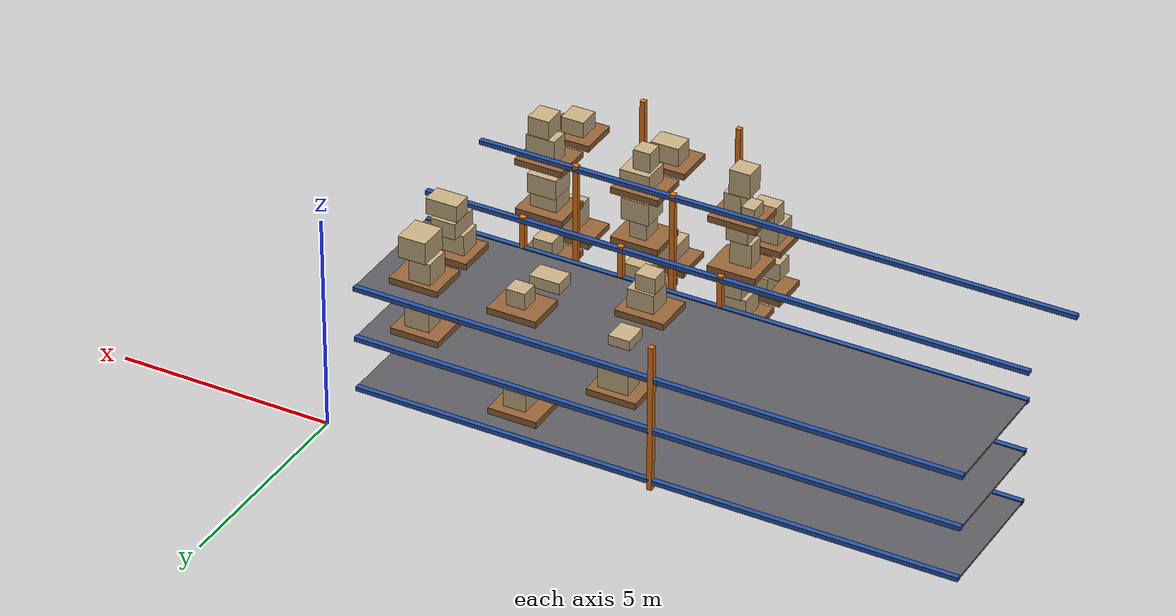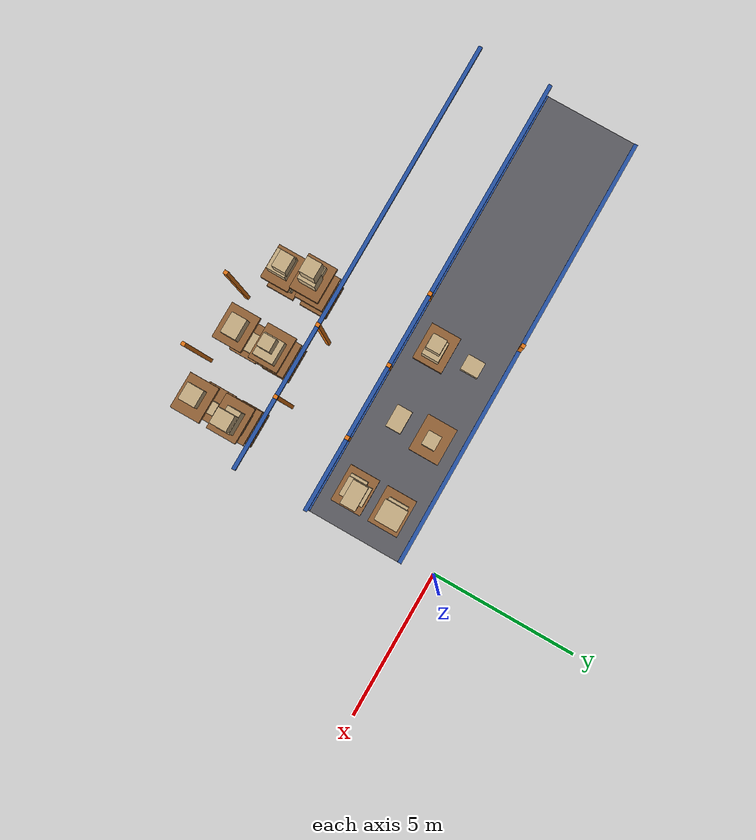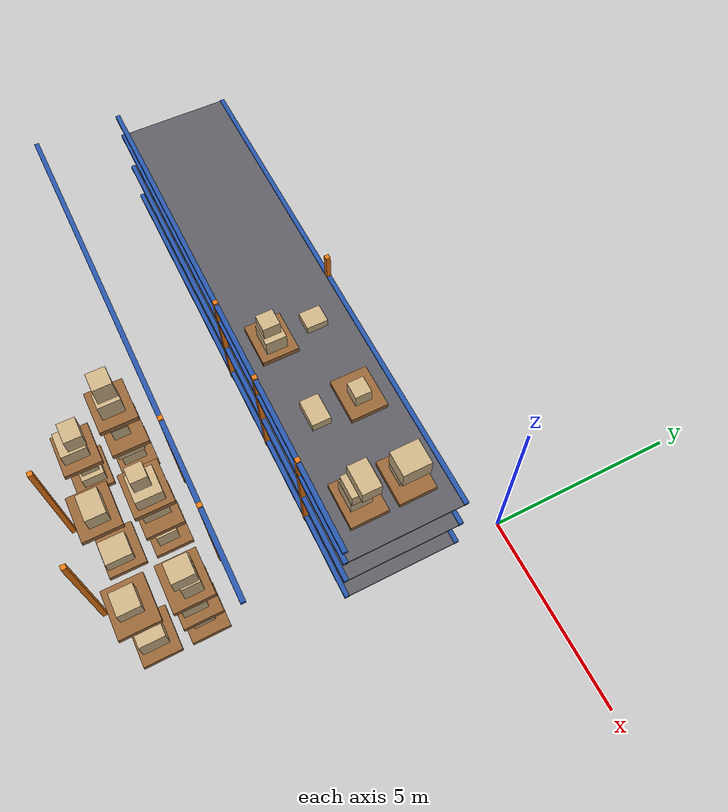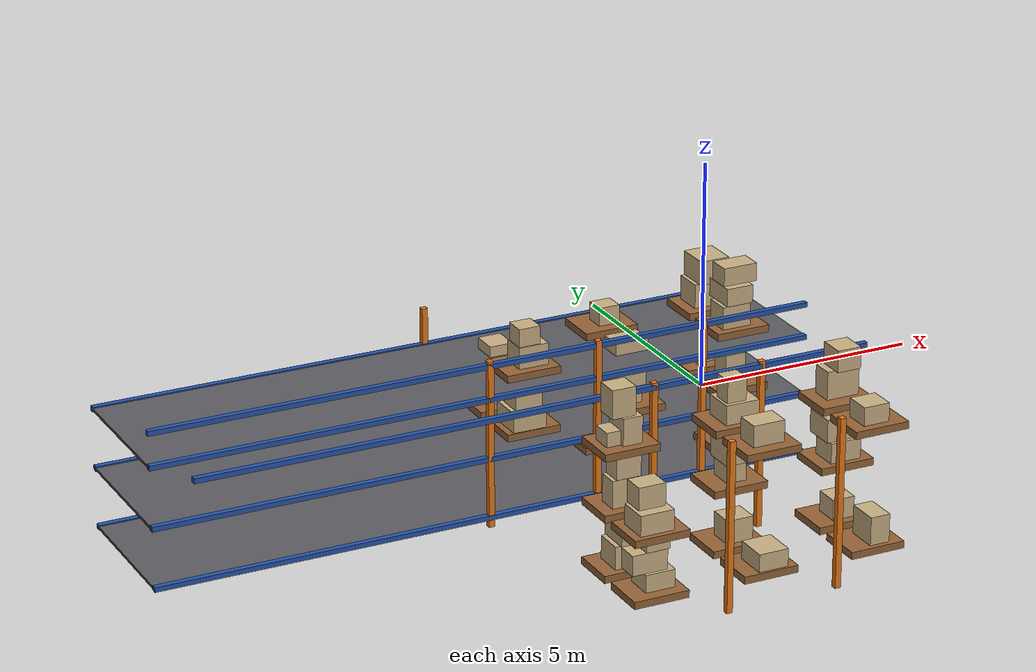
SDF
<sdf version="1.7">
 <world name="default">
  <model name="warehouse_racks">
   <static>1</static>
   <link name="r00_u4_0">
    <pose>-4.66667 -9.5 1.75 0 0 0</pose>
    <collision name="c"><geometry><box><size>0.12 0.12 3.5</size></box></geometry></collision>
    <visual name="v">
     <geometry><box><size>0.12 0.12 3.5</size></box></geometry>
     <material>
      <ambient>0.910 0.471 0.086 1</ambient>
      <diffuse>0.910 0.471 0.086 1</diffuse>
      <specular>0.1 0.1 0.1 1</specular>
     </material>
    </visual>
   </link>
   <link name="r00_u4_1">
    <pose>-4.66667 -6.5 1.75 0 0 0</pose>
    <collision name="c"><geometry><box><size>0.12 0.12 3.5</size></box></geometry></collision>
    <visual name="v">
     <geometry><box><size>0.12 0.12 3.5</size></box></geometry>
     <material>
      <ambient>0.910 0.471 0.086 1</ambient>
      <diffuse>0.910 0.471 0.086 1</diffuse>
      <specular>0.1 0.1 0.1 1</specular>
     </material>
    </visual>
   </link>
   <link name="r00_u5_0">
    <pose>-2.33333 -9.5 1.75 0 0 0</pose>
    <collision name="c"><geometry><box><size>0.12 0.12 3.5</size></box></geometry></collision>
    <visual name="v">
     <geometry><box><size>0.12 0.12 3.5</size></box></geometry>
     <material>
      <ambient>0.910 0.471 0.086 1</ambient>
      <diffuse>0.910 0.471 0.086 1</diffuse>
      <specular>0.1 0.1 0.1 1</specular>
     </material>
    </visual>
   </link>
   <link name="r00_u5_1">
    <pose>-2.33333 -6.5 1.75 0 0 0</pose>
    <collision name="c"><geometry><box><size>0.12 0.12 3.5</size></box></geometry></collision>
    <visual name="v">
     <geometry><box><size>0.12 0.12 3.5</size></box></geometry>
     <material>
      <ambient>0.910 0.471 0.086 1</ambient>
      <diffuse>0.910 0.471 0.086 1</diffuse>
      <specular>0.1 0.1 0.1 1</specular>
     </material>
    </visual>
   </link>
   <link name="r00_b3_1">
    <pose>-7 -6.5 3.4 0 0 0</pose>
    <collision name="c"><geometry><box><size>14 0.12 0.1</size></box></geometry></collision>
    <visual name="v">
     <geometry><box><size>14 0.12 0.1</size></box></geometry>
     <material>
      <ambient>0.149 0.329 0.659 1</ambient>
      <diffuse>0.149 0.329 0.659 1</diffuse>
      <specular>0.1 0.1 0.1 1</specular>
     </material>
    </visual>
   </link>
   <link name="r10_u3_0">
    <pose>-7 -4.2 1.75 0 0 0</pose>
    <collision name="c"><geometry><box><size>0.12 0.12 3.5</size></box></geometry></collision>
    <visual name="v">
     <geometry><box><size>0.12 0.12 3.5</size></box></geometry>
     <material>
      <ambient>0.910 0.471 0.086 1</ambient>
      <diffuse>0.910 0.471 0.086 1</diffuse>
      <specular>0.1 0.1 0.1 1</specular>
     </material>
    </visual>
   </link>
   <link name="r10_u3_1">
    <pose>-7 -1.2 1.75 0 0 0</pose>
    <collision name="c"><geometry><box><size>0.12 0.12 3.5</size></box></geometry></collision>
    <visual name="v">
     <geometry><box><size>0.12 0.12 3.5</size></box></geometry>
     <material>
      <ambient>0.910 0.471 0.086 1</ambient>
      <diffuse>0.910 0.471 0.086 1</diffuse>
      <specular>0.1 0.1 0.1 1</specular>
     </material>
    </visual>
   </link>
   <link name="r10_u4_0">
    <pose>-4.66667 -4.2 1.75 0 0 0</pose>
    <collision name="c"><geometry><box><size>0.12 0.12 3.5</size></box></geometry></collision>
    <visual name="v">
     <geometry><box><size>0.12 0.12 3.5</size></box></geometry>
     <material>
      <ambient>0.910 0.471 0.086 1</ambient>
      <diffuse>0.910 0.471 0.086 1</diffuse>
      <specular>0.1 0.1 0.1 1</specular>
     </material>
    </visual>
   </link>
   <link name="r10_u5_0">
    <pose>-2.33333 -4.2 1.75 0 0 0</pose>
    <collision name="c"><geometry><box><size>0.12 0.12 3.5</size></box></geometry></collision>
    <visual name="v">
     <geometry><box><size>0.12 0.12 3.5</size></box></geometry>
     <material>
      <ambient>0.910 0.471 0.086 1</ambient>
      <diffuse>0.910 0.471 0.086 1</diffuse>
      <specular>0.1 0.1 0.1 1</specular>
     </material>
    </visual>
   </link>
   <link name="r10_b0_0">
    <pose>-7 -4.2 0.2 0 0 0</pose>
    <collision name="c"><geometry><box><size>14 0.12 0.1</size></box></geometry></collision>
    <visual name="v">
     <geometry><box><size>14 0.12 0.1</size></box></geometry>
     <material>
      <ambient>0.149 0.329 0.659 1</ambient>
      <diffuse>0.149 0.329 0.659 1</diffuse>
      <specular>0.1 0.1 0.1 1</specular>
     </material>
    </visual>
   </link>
   <link name="r10_b0_1">
    <pose>-7 -1.2 0.2 0 0 0</pose>
    <collision name="c"><geometry><box><size>14 0.12 0.1</size></box></geometry></collision>
    <visual name="v">
     <geometry><box><size>14 0.12 0.1</size></box></geometry>
     <material>
      <ambient>0.149 0.329 0.659 1</ambient>
      <diffuse>0.149 0.329 0.659 1</diffuse>
      <specular>0.1 0.1 0.1 1</specular>
     </material>
    </visual>
   </link>
   <link name="r10_b1_0">
    <pose>-7 -4.2 1.45 0 0 0</pose>
    <collision name="c"><geometry><box><size>14 0.12 0.1</size></box></geometry></collision>
    <visual name="v">
     <geometry><box><size>14 0.12 0.1</size></box></geometry>
     <material>
      <ambient>0.149 0.329 0.659 1</ambient>
      <diffuse>0.149 0.329 0.659 1</diffuse>
      <specular>0.1 0.1 0.1 1</specular>
     </material>
    </visual>
   </link>
   <link name="r10_b1_1">
    <pose>-7 -1.2 1.45 0 0 0</pose>
    <collision name="c"><geometry><box><size>14 0.12 0.1</size></box></geometry></collision>
    <visual name="v">
     <geometry><box><size>14 0.12 0.1</size></box></geometry>
     <material>
      <ambient>0.149 0.329 0.659 1</ambient>
      <diffuse>0.149 0.329 0.659 1</diffuse>
      <specular>0.1 0.1 0.1 1</specular>
     </material>
    </visual>
   </link>
   <link name="r10_b2_0">
    <pose>-7 -4.2 2.7 0 0 0</pose>
    <collision name="c"><geometry><box><size>14 0.12 0.1</size></box></geometry></collision>
    <visual name="v">
     <geometry><box><size>14 0.12 0.1</size></box></geometry>
     <material>
      <ambient>0.149 0.329 0.659 1</ambient>
      <diffuse>0.149 0.329 0.659 1</diffuse>
      <specular>0.1 0.1 0.1 1</specular>
     </material>
    </visual>
   </link>
   <link name="r10_b2_1">
    <pose>-7 -1.2 2.7 0 0 0</pose>
    <collision name="c"><geometry><box><size>14 0.12 0.1</size></box></geometry></collision>
    <visual name="v">
     <geometry><box><size>14 0.12 0.1</size></box></geometry>
     <material>
      <ambient>0.149 0.329 0.659 1</ambient>
      <diffuse>0.149 0.329 0.659 1</diffuse>
      <specular>0.1 0.1 0.1 1</specular>
     </material>
    </visual>
   </link>
   <link name="r10_b3_0">
    <pose>-7 -4.2 3.4 0 0 0</pose>
    <collision name="c"><geometry><box><size>14 0.12 0.1</size></box></geometry></collision>
    <visual name="v">
     <geometry><box><size>14 0.12 0.1</size></box></geometry>
     <material>
      <ambient>0.149 0.329 0.659 1</ambient>
      <diffuse>0.149 0.329 0.659 1</diffuse>
      <specular>0.1 0.1 0.1 1</specular>
     </material>
    </visual>
   </link>
   <link name="r10_d0">
    <pose>-7 -2.7 0.2 0 0 0</pose>
    <collision name="c"><geometry><box><size>14 3 0.05</size></box></geometry></collision>
    <visual name="v">
     <geometry><box><size>14 3 0.05</size></box></geometry>
     <material>
      <ambient>0.361 0.361 0.384 1</ambient>
      <diffuse>0.361 0.361 0.384 1</diffuse>
      <specular>0.1 0.1 0.1 1</specular>
     </material>
    </visual>
   </link>
   <link name="r10_d1">
    <pose>-7 -2.7 1.45 0 0 0</pose>
    <collision name="c"><geometry><box><size>14 3 0.05</size></box></geometry></collision>
    <visual name="v">
     <geometry><box><size>14 3 0.05</size></box></geometry>
     <material>
      <ambient>0.361 0.361 0.384 1</ambient>
      <diffuse>0.361 0.361 0.384 1</diffuse>
      <specular>0.1 0.1 0.1 1</specular>
     </material>
    </visual>
   </link>
   <link name="r10_d2">
    <pose>-7 -2.7 2.7 0 0 0</pose>
    <collision name="c"><geometry><box><size>14 3 0.05</size></box></geometry></collision>
    <visual name="v">
     <geometry><box><size>14 3 0.05</size></box></geometry>
     <material>
      <ambient>0.361 0.361 0.384 1</ambient>
      <diffuse>0.361 0.361 0.384 1</diffuse>
      <specular>0.1 0.1 0.1 1</specular>
     </material>
    </visual>
   </link>
  </model>
  <model name="warehouse_loads">
   <static>1</static>
   <link name="r00L0_3_0_p">
    <pose>-5.83333 -8.6 0.325 0 0 0</pose>
    <collision name="c"><geometry><box><size>1.15 0.95 0.15</size></box></geometry></collision>
    <visual name="v">
     <geometry><box><size>1.15 0.95 0.15</size></box></geometry>
     <material>
      <ambient>0.588 0.392 0.216 1</ambient>
      <diffuse>0.588 0.392 0.216 1</diffuse>
      <specular>0.1 0.1 0.1 1</specular>
     </material>
    </visual>
   </link>
   <link name="r00L0_3_0_c0">
    <pose>-5.73632 -8.54233 0.583036 0 0 0</pose>
    <collision name="c"><geometry><box><size>0.618374 0.579292 0.366073</size></box></geometry></collision>
    <visual name="v">
     <geometry><box><size>0.618374 0.579292 0.366073</size></box></geometry>
     <material>
      <ambient>0.792 0.690 0.518 1</ambient>
      <diffuse>0.792 0.690 0.518 1</diffuse>
      <specular>0.1 0.1 0.1 1</specular>
     </material>
    </visual>
   </link>
   <link name="r00L0_3_0_c1">
    <pose>-5.92542 -8.5442 0.974268 0 0 0</pose>
    <collision name="c"><geometry><box><size>0.740094 0.436673 0.416391</size></box></geometry></collision>
    <visual name="v">
     <geometry><box><size>0.740094 0.436673 0.416391</size></box></geometry>
     <material>
      <ambient>0.792 0.690 0.518 1</ambient>
      <diffuse>0.792 0.690 0.518 1</diffuse>
      <specular>0.1 0.1 0.1 1</specular>
     </material>
    </visual>
   </link>
   <link name="r00L0_3_0_c2">
    <pose>-5.75105 -8.5362 1.41025 0 0 0</pose>
    <collision name="c"><geometry><box><size>0.494656 0.445344 0.455564</size></box></geometry></collision>
    <visual name="v">
     <geometry><box><size>0.494656 0.445344 0.455564</size></box></geometry>
     <material>
      <ambient>0.792 0.690 0.518 1</ambient>
      <diffuse>0.792 0.690 0.518 1</diffuse>
      <specular>0.1 0.1 0.1 1</specular>
     </material>
    </visual>
   </link>
   <link name="r00L0_3_1_p">
    <pose>-5.83333 -7.4 0.325 0 0 0</pose>
    <collision name="c"><geometry><box><size>1.15 0.95 0.15</size></box></geometry></collision>
    <visual name="v">
     <geometry><box><size>1.15 0.95 0.15</size></box></geometry>
     <material>
      <ambient>0.588 0.392 0.216 1</ambient>
      <diffuse>0.588 0.392 0.216 1</diffuse>
      <specular>0.1 0.1 0.1 1</specular>
     </material>
    </visual>
   </link>
   <link name="r00L0_3_1_c0">
    <pose>-5.83441 -7.43459 0.639348 0 0 0</pose>
    <collision name="c"><geometry><box><size>0.542082 0.58781 0.478696</size></box></geometry></collision>
    <visual name="v">
     <geometry><box><size>0.542082 0.58781 0.478696</size></box></geometry>
     <material>
      <ambient>0.792 0.690 0.518 1</ambient>
      <diffuse>0.792 0.690 0.518 1</diffuse>
      <specular>0.1 0.1 0.1 1</specular>
     </material>
    </visual>
   </link>
   <link name="r00L0_3_1_c1">
    <pose>-5.75428 -7.44622 1.07661 0 0 0</pose>
    <collision name="c"><geometry><box><size>0.497672 0.679856 0.395836</size></box></geometry></collision>
    <visual name="v">
     <geometry><box><size>0.497672 0.679856 0.395836</size></box></geometry>
     <material>
      <ambient>0.792 0.690 0.518 1</ambient>
      <diffuse>0.792 0.690 0.518 1</diffuse>
      <specular>0.1 0.1 0.1 1</specular>
     </material>
    </visual>
   </link>
   <link name="r00L0_4_0_p">
    <pose>-3.5 -8.6 0.325 0 0 0</pose>
    <collision name="c"><geometry><box><size>1.15 0.95 0.15</size></box></geometry></collision>
    <visual name="v">
     <geometry><box><size>1.15 0.95 0.15</size></box></geometry>
     <material>
      <ambient>0.588 0.392 0.216 1</ambient>
      <diffuse>0.588 0.392 0.216 1</diffuse>
      <specular>0.1 0.1 0.1 1</specular>
     </material>
    </visual>
   </link>
   <link name="r00L0_4_0_c0">
    <pose>-3.42875 -8.68668 0.585468 0 0 0</pose>
    <collision name="c"><geometry><box><size>0.622054 0.68057 0.370936</size></box></geometry></collision>
    <visual name="v">
     <geometry><box><size>0.622054 0.68057 0.370936</size></box></geometry>
     <material>
      <ambient>0.792 0.690 0.518 1</ambient>
      <diffuse>0.792 0.690 0.518 1</diffuse>
      <specular>0.1 0.1 0.1 1</specular>
     </material>
    </visual>
   </link>
   <link name="r00L0_4_1_p">
    <pose>-3.5 -7.4 0.325 0 0 0</pose>
    <collision name="c"><geometry><box><size>1.15 0.95 0.15</size></box></geometry></collision>
    <visual name="v">
     <geometry><box><size>1.15 0.95 0.15</size></box></geometry>
     <material>
      <ambient>0.588 0.392 0.216 1</ambient>
      <diffuse>0.588 0.392 0.216 1</diffuse>
      <specular>0.1 0.1 0.1 1</specular>
     </material>
    </visual>
   </link>
   <link name="r00L0_4_1_c0">
    <pose>-3.41467 -7.44643 0.644133 0 0 0</pose>
    <collision name="c"><geometry><box><size>0.558821 0.518703 0.488266</size></box></geometry></collision>
    <visual name="v">
     <geometry><box><size>0.558821 0.518703 0.488266</size></box></geometry>
     <material>
      <ambient>0.792 0.690 0.518 1</ambient>
      <diffuse>0.792 0.690 0.518 1</diffuse>
      <specular>0.1 0.1 0.1 1</specular>
     </material>
    </visual>
   </link>
   <link name="r00L0_5_0_p">
    <pose>-1.16667 -8.6 0.325 0 0 0</pose>
    <collision name="c"><geometry><box><size>1.15 0.95 0.15</size></box></geometry></collision>
    <visual name="v">
     <geometry><box><size>1.15 0.95 0.15</size></box></geometry>
     <material>
      <ambient>0.588 0.392 0.216 1</ambient>
      <diffuse>0.588 0.392 0.216 1</diffuse>
      <specular>0.1 0.1 0.1 1</specular>
     </material>
    </visual>
   </link>
   <link name="r00L0_5_0_c0">
    <pose>-1.07282 -8.64762 0.692266 0 0 0</pose>
    <collision name="c"><geometry><box><size>0.415122 0.648338 0.584531</size></box></geometry></collision>
    <visual name="v">
     <geometry><box><size>0.415122 0.648338 0.584531</size></box></geometry>
     <material>
      <ambient>0.792 0.690 0.518 1</ambient>
      <diffuse>0.792 0.690 0.518 1</diffuse>
      <specular>0.1 0.1 0.1 1</specular>
     </material>
    </visual>
   </link>
   <link name="r00L0_5_1_p">
    <pose>-1.16667 -7.4 0.325 0 0 0</pose>
    <collision name="c"><geometry><box><size>1.15 0.95 0.15</size></box></geometry></collision>
    <visual name="v">
     <geometry><box><size>1.15 0.95 0.15</size></box></geometry>
     <material>
      <ambient>0.588 0.392 0.216 1</ambient>
      <diffuse>0.588 0.392 0.216 1</diffuse>
      <specular>0.1 0.1 0.1 1</specular>
     </material>
    </visual>
   </link>
   <link name="r00L0_5_1_c0">
    <pose>-1.11477 -7.44201 0.613126 0 0 0</pose>
    <collision name="c"><geometry><box><size>0.470619 0.509197 0.426251</size></box></geometry></collision>
    <visual name="v">
     <geometry><box><size>0.470619 0.509197 0.426251</size></box></geometry>
     <material>
      <ambient>0.792 0.690 0.518 1</ambient>
      <diffuse>0.792 0.690 0.518 1</diffuse>
      <specular>0.1 0.1 0.1 1</specular>
     </material>
    </visual>
   </link>
   <link name="r00L1_3_0_p">
    <pose>-5.83333 -8.6 1.575 0 0 0</pose>
    <collision name="c"><geometry><box><size>1.15 0.95 0.15</size></box></geometry></collision>
    <visual name="v">
     <geometry><box><size>1.15 0.95 0.15</size></box></geometry>
     <material>
      <ambient>0.588 0.392 0.216 1</ambient>
      <diffuse>0.588 0.392 0.216 1</diffuse>
      <specular>0.1 0.1 0.1 1</specular>
     </material>
    </visual>
   </link>
   <link name="r00L1_3_0_c0">
    <pose>-5.88489 -8.64139 1.86024 0 0 0</pose>
    <collision name="c"><geometry><box><size>0.704688 0.63469 0.420483</size></box></geometry></collision>
    <visual name="v">
     <geometry><box><size>0.704688 0.63469 0.420483</size></box></geometry>
     <material>
      <ambient>0.792 0.690 0.518 1</ambient>
      <diffuse>0.792 0.690 0.518 1</diffuse>
      <specular>0.1 0.1 0.1 1</specular>
     </material>
    </visual>
   </link>
   <link name="r00L1_3_0_c1">
    <pose>-5.88068 -8.50764 2.30121 0 0 0</pose>
    <collision name="c"><geometry><box><size>0.560809 0.455137 0.461456</size></box></geometry></collision>
    <visual name="v">
     <geometry><box><size>0.560809 0.455137 0.461456</size></box></geometry>
     <material>
      <ambient>0.792 0.690 0.518 1</ambient>
      <diffuse>0.792 0.690 0.518 1</diffuse>
      <specular>0.1 0.1 0.1 1</specular>
     </material>
    </visual>
   </link>
   <link name="r00L1_3_1_p">
    <pose>-5.83333 -7.4 1.575 0 0 0</pose>
    <collision name="c"><geometry><box><size>1.15 0.95 0.15</size></box></geometry></collision>
    <visual name="v">
     <geometry><box><size>1.15 0.95 0.15</size></box></geometry>
     <material>
      <ambient>0.588 0.392 0.216 1</ambient>
      <diffuse>0.588 0.392 0.216 1</diffuse>
      <specular>0.1 0.1 0.1 1</specular>
     </material>
    </visual>
   </link>
   <link name="r00L1_3_1_c0">
    <pose>-5.88976 -7.46341 1.9353 0 0 0</pose>
    <collision name="c"><geometry><box><size>0.513237 0.412056 0.570597</size></box></geometry></collision>
    <visual name="v">
     <geometry><box><size>0.513237 0.412056 0.570597</size></box></geometry>
     <material>
      <ambient>0.792 0.690 0.518 1</ambient>
      <diffuse>0.792 0.690 0.518 1</diffuse>
      <specular>0.1 0.1 0.1 1</specular>
     </material>
    </visual>
   </link>
   <link name="r00L1_3_1_c1">
    <pose>-5.80213 -7.45036 2.43046 0 0 0</pose>
    <collision name="c"><geometry><box><size>0.517366 0.429362 0.419732</size></box></geometry></collision>
    <visual name="v">
     <geometry><box><size>0.517366 0.429362 0.419732</size></box></geometry>
     <material>
      <ambient>0.792 0.690 0.518 1</ambient>
      <diffuse>0.792 0.690 0.518 1</diffuse>
      <specular>0.1 0.1 0.1 1</specular>
     </material>
    </visual>
   </link>
   <link name="r00L1_3_1_c2">
    <pose>-5.90456 -7.38264 2.91746 0 0 0</pose>
    <collision name="c"><geometry><box><size>0.671683 0.431798 0.554261</size></box></geometry></collision>
    <visual name="v">
     <geometry><box><size>0.671683 0.431798 0.554261</size></box></geometry>
     <material>
      <ambient>0.792 0.690 0.518 1</ambient>
      <diffuse>0.792 0.690 0.518 1</diffuse>
      <specular>0.1 0.1 0.1 1</specular>
     </material>
    </visual>
   </link>
   <link name="r00L1_4_1_p">
    <pose>-3.5 -7.4 1.575 0 0 0</pose>
    <collision name="c"><geometry><box><size>1.15 0.95 0.15</size></box></geometry></collision>
    <visual name="v">
     <geometry><box><size>1.15 0.95 0.15</size></box></geometry>
     <material>
      <ambient>0.588 0.392 0.216 1</ambient>
      <diffuse>0.588 0.392 0.216 1</diffuse>
      <specular>0.1 0.1 0.1 1</specular>
     </material>
    </visual>
   </link>
   <link name="r00L1_4_1_c0">
    <pose>-3.48288 -7.39416 1.8541 0 0 0</pose>
    <collision name="c"><geometry><box><size>0.407873 0.506486 0.408202</size></box></geometry></collision>
    <visual name="v">
     <geometry><box><size>0.407873 0.506486 0.408202</size></box></geometry>
     <material>
      <ambient>0.792 0.690 0.518 1</ambient>
      <diffuse>0.792 0.690 0.518 1</diffuse>
      <specular>0.1 0.1 0.1 1</specular>
     </material>
    </visual>
   </link>
   <link name="r00L1_4_1_c1">
    <pose>-3.42418 -7.4221 2.3227 0 0 0</pose>
    <collision name="c"><geometry><box><size>0.662689 0.63014 0.528998</size></box></geometry></collision>
    <visual name="v">
     <geometry><box><size>0.662689 0.63014 0.528998</size></box></geometry>
     <material>
      <ambient>0.792 0.690 0.518 1</ambient>
      <diffuse>0.792 0.690 0.518 1</diffuse>
      <specular>0.1 0.1 0.1 1</specular>
     </material>
    </visual>
   </link>
   <link name="r00L1_5_1_p">
    <pose>-1.16667 -7.4 1.575 0 0 0</pose>
    <collision name="c"><geometry><box><size>1.15 0.95 0.15</size></box></geometry></collision>
    <visual name="v">
     <geometry><box><size>1.15 0.95 0.15</size></box></geometry>
     <material>
      <ambient>0.588 0.392 0.216 1</ambient>
      <diffuse>0.588 0.392 0.216 1</diffuse>
      <specular>0.1 0.1 0.1 1</specular>
     </material>
    </visual>
   </link>
   <link name="r00L1_5_1_c0">
    <pose>-1.14293 -7.47105 1.86052 0 0 0</pose>
    <collision name="c"><geometry><box><size>0.652237 0.572967 0.421044</size></box></geometry></collision>
    <visual name="v">
     <geometry><box><size>0.652237 0.572967 0.421044</size></box></geometry>
     <material>
      <ambient>0.792 0.690 0.518 1</ambient>
      <diffuse>0.792 0.690 0.518 1</diffuse>
      <specular>0.1 0.1 0.1 1</specular>
     </material>
    </visual>
   </link>
   <link name="r00L1_5_1_c1">
    <pose>-1.18082 -7.35979 2.31017 0 0 0</pose>
    <collision name="c"><geometry><box><size>0.6887 0.650254 0.478245</size></box></geometry></collision>
    <visual name="v">
     <geometry><box><size>0.6887 0.650254 0.478245</size></box></geometry>
     <material>
      <ambient>0.792 0.690 0.518 1</ambient>
      <diffuse>0.792 0.690 0.518 1</diffuse>
      <specular>0.1 0.1 0.1 1</specular>
     </material>
    </visual>
   </link>
   <link name="r00L2_3_1_p">
    <pose>-5.83333 -7.4 2.825 0 0 0</pose>
    <collision name="c"><geometry><box><size>1.15 0.95 0.15</size></box></geometry></collision>
    <visual name="v">
     <geometry><box><size>1.15 0.95 0.15</size></box></geometry>
     <material>
      <ambient>0.588 0.392 0.216 1</ambient>
      <diffuse>0.588 0.392 0.216 1</diffuse>
      <specular>0.1 0.1 0.1 1</specular>
     </material>
    </visual>
   </link>
   <link name="r00L2_3_1_c0">
    <pose>-5.73971 -7.41011 3.17749 0 0 0</pose>
    <collision name="c"><geometry><box><size>0.406127 0.56064 0.554974</size></box></geometry></collision>
    <visual name="v">
     <geometry><box><size>0.406127 0.56064 0.554974</size></box></geometry>
     <material>
      <ambient>0.792 0.690 0.518 1</ambient>
      <diffuse>0.792 0.690 0.518 1</diffuse>
      <specular>0.1 0.1 0.1 1</specular>
     </material>
    </visual>
   </link>
   <link name="r00L2_3_1_c1">
    <pose>-5.89119 -7.38371 3.74817 0 0 0</pose>
    <collision name="c"><geometry><box><size>0.49403 0.473443 0.586397</size></box></geometry></collision>
    <visual name="v">
     <geometry><box><size>0.49403 0.473443 0.586397</size></box></geometry>
     <material>
      <ambient>0.792 0.690 0.518 1</ambient>
      <diffuse>0.792 0.690 0.518 1</diffuse>
      <specular>0.1 0.1 0.1 1</specular>
     </material>
    </visual>
   </link>
   <link name="r00L2_4_0_p">
    <pose>-3.5 -8.6 2.825 0 0 0</pose>
    <collision name="c"><geometry><box><size>1.15 0.95 0.15</size></box></geometry></collision>
    <visual name="v">
     <geometry><box><size>1.15 0.95 0.15</size></box></geometry>
     <material>
      <ambient>0.588 0.392 0.216 1</ambient>
      <diffuse>0.588 0.392 0.216 1</diffuse>
      <specular>0.1 0.1 0.1 1</specular>
     </material>
    </visual>
   </link>
   <link name="r00L2_4_0_c0">
    <pose>-3.47933 -8.57367 3.11994 0 0 0</pose>
    <collision name="c"><geometry><box><size>0.66162 0.491633 0.439888</size></box></geometry></collision>
    <visual name="v">
     <geometry><box><size>0.66162 0.491633 0.439888</size></box></geometry>
     <material>
      <ambient>0.792 0.690 0.518 1</ambient>
      <diffuse>0.792 0.690 0.518 1</diffuse>
      <specular>0.1 0.1 0.1 1</specular>
     </material>
    </visual>
   </link>
   <link name="r00L2_4_1_p">
    <pose>-3.5 -7.4 2.825 0 0 0</pose>
    <collision name="c"><geometry><box><size>1.15 0.95 0.15</size></box></geometry></collision>
    <visual name="v">
     <geometry><box><size>1.15 0.95 0.15</size></box></geometry>
     <material>
      <ambient>0.588 0.392 0.216 1</ambient>
      <diffuse>0.588 0.392 0.216 1</diffuse>
      <specular>0.1 0.1 0.1 1</specular>
     </material>
    </visual>
   </link>
   <link name="r00L2_4_1_c0">
    <pose>-3.42046 -7.40277 3.10392 0 0 0</pose>
    <collision name="c"><geometry><box><size>0.710402 0.646168 0.407846</size></box></geometry></collision>
    <visual name="v">
     <geometry><box><size>0.710402 0.646168 0.407846</size></box></geometry>
     <material>
      <ambient>0.792 0.690 0.518 1</ambient>
      <diffuse>0.792 0.690 0.518 1</diffuse>
      <specular>0.1 0.1 0.1 1</specular>
     </material>
    </visual>
   </link>
   <link name="r00L2_4_1_c1">
    <pose>-3.50985 -7.43961 3.54431 0 0 0</pose>
    <collision name="c"><geometry><box><size>0.408692 0.401257 0.472924</size></box></geometry></collision>
    <visual name="v">
     <geometry><box><size>0.408692 0.401257 0.472924</size></box></geometry>
     <material>
      <ambient>0.792 0.690 0.518 1</ambient>
      <diffuse>0.792 0.690 0.518 1</diffuse>
      <specular>0.1 0.1 0.1 1</specular>
     </material>
    </visual>
   </link>
   <link name="r00L2_5_0_p">
    <pose>-1.16667 -8.6 2.825 0 0 0</pose>
    <collision name="c"><geometry><box><size>1.15 0.95 0.15</size></box></geometry></collision>
    <visual name="v">
     <geometry><box><size>1.15 0.95 0.15</size></box></geometry>
     <material>
      <ambient>0.588 0.392 0.216 1</ambient>
      <diffuse>0.588 0.392 0.216 1</diffuse>
      <specular>0.1 0.1 0.1 1</specular>
     </material>
    </visual>
   </link>
   <link name="r00L2_5_0_c0">
    <pose>-1.2004 -8.63509 3.09011 0 0 0</pose>
    <collision name="c"><geometry><box><size>0.545663 0.531637 0.380227</size></box></geometry></collision>
    <visual name="v">
     <geometry><box><size>0.545663 0.531637 0.380227</size></box></geometry>
     <material>
      <ambient>0.792 0.690 0.518 1</ambient>
      <diffuse>0.792 0.690 0.518 1</diffuse>
      <specular>0.1 0.1 0.1 1</specular>
     </material>
    </visual>
   </link>
   <link name="r00L2_5_1_p">
    <pose>-1.16667 -7.4 2.825 0 0 0</pose>
    <collision name="c"><geometry><box><size>1.15 0.95 0.15</size></box></geometry></collision>
    <visual name="v">
     <geometry><box><size>1.15 0.95 0.15</size></box></geometry>
     <material>
      <ambient>0.588 0.392 0.216 1</ambient>
      <diffuse>0.588 0.392 0.216 1</diffuse>
      <specular>0.1 0.1 0.1 1</specular>
     </material>
    </visual>
   </link>
   <link name="r00L2_5_1_c0">
    <pose>-1.12406 -7.31969 3.1908 0 0 0</pose>
    <collision name="c"><geometry><box><size>0.693689 0.442014 0.5816</size></box></geometry></collision>
    <visual name="v">
     <geometry><box><size>0.693689 0.442014 0.5816</size></box></geometry>
     <material>
      <ambient>0.792 0.690 0.518 1</ambient>
      <diffuse>0.792 0.690 0.518 1</diffuse>
      <specular>0.1 0.1 0.1 1</specular>
     </material>
    </visual>
   </link>
   <link name="r00L2_5_1_c1">
    <pose>-1.06691 -7.38216 3.70571 0 0 0</pose>
    <collision name="c"><geometry><box><size>0.501442 0.530278 0.448225</size></box></geometry></collision>
    <visual name="v">
     <geometry><box><size>0.501442 0.530278 0.448225</size></box></geometry>
     <material>
      <ambient>0.792 0.690 0.518 1</ambient>
      <diffuse>0.792 0.690 0.518 1</diffuse>
      <specular>0.1 0.1 0.1 1</specular>
     </material>
    </visual>
   </link>
   <link name="r10L0_4_1_p">
    <pose>-3.5 -2.1 0.325 0 0 0</pose>
    <collision name="c"><geometry><box><size>1.15 0.95 0.15</size></box></geometry></collision>
    <visual name="v">
     <geometry><box><size>1.15 0.95 0.15</size></box></geometry>
     <material>
      <ambient>0.588 0.392 0.216 1</ambient>
      <diffuse>0.588 0.392 0.216 1</diffuse>
      <specular>0.1 0.1 0.1 1</specular>
     </material>
    </visual>
   </link>
   <link name="r10L0_4_1_c0">
    <pose>-3.43921 -2.18245 0.613587 0 0 0</pose>
    <collision name="c"><geometry><box><size>0.533045 0.669056 0.427175</size></box></geometry></collision>
    <visual name="v">
     <geometry><box><size>0.533045 0.669056 0.427175</size></box></geometry>
     <material>
      <ambient>0.792 0.690 0.518 1</ambient>
      <diffuse>0.792 0.690 0.518 1</diffuse>
      <specular>0.1 0.1 0.1 1</specular>
     </material>
    </visual>
   </link>
   <link name="r10L0_5_0_p">
    <pose>-1.16667 -3.3 0.325 0 0 0</pose>
    <collision name="c"><geometry><box><size>1.15 0.95 0.15</size></box></geometry></collision>
    <visual name="v">
     <geometry><box><size>1.15 0.95 0.15</size></box></geometry>
     <material>
      <ambient>0.588 0.392 0.216 1</ambient>
      <diffuse>0.588 0.392 0.216 1</diffuse>
      <specular>0.1 0.1 0.1 1</specular>
     </material>
    </visual>
   </link>
   <link name="r10L0_5_0_c0">
    <pose>-1.202 -3.25254 0.630793 0 0 0</pose>
    <collision name="c"><geometry><box><size>0.468501 0.589535 0.461587</size></box></geometry></collision>
    <visual name="v">
     <geometry><box><size>0.468501 0.589535 0.461587</size></box></geometry>
     <material>
      <ambient>0.792 0.690 0.518 1</ambient>
      <diffuse>0.792 0.690 0.518 1</diffuse>
      <specular>0.1 0.1 0.1 1</specular>
     </material>
    </visual>
   </link>
   <link name="r10L0_5_0_c1">
    <pose>-1.14159 -3.31905 1.06759 0 0 0</pose>
    <collision name="c"><geometry><box><size>0.566087 0.621082 0.412003</size></box></geometry></collision>
    <visual name="v">
     <geometry><box><size>0.566087 0.621082 0.412003</size></box></geometry>
     <material>
      <ambient>0.792 0.690 0.518 1</ambient>
      <diffuse>0.792 0.690 0.518 1</diffuse>
      <specular>0.1 0.1 0.1 1</specular>
     </material>
    </visual>
   </link>
   <link name="r10L1_3_0_p">
    <pose>-5.83333 -3.3 1.575 0 0 0</pose>
    <collision name="c"><geometry><box><size>1.15 0.95 0.15</size></box></geometry></collision>
    <visual name="v">
     <geometry><box><size>1.15 0.95 0.15</size></box></geometry>
     <material>
      <ambient>0.588 0.392 0.216 1</ambient>
      <diffuse>0.588 0.392 0.216 1</diffuse>
      <specular>0.1 0.1 0.1 1</specular>
     </material>
    </visual>
   </link>
   <link name="r10L1_3_0_c0">
    <pose>-5.91652 -3.38072 1.85811 0 0 0</pose>
    <collision name="c"><geometry><box><size>0.709216 0.745738 0.416223</size></box></geometry></collision>
    <visual name="v">
     <geometry><box><size>0.709216 0.745738 0.416223</size></box></geometry>
     <material>
      <ambient>0.792 0.690 0.518 1</ambient>
      <diffuse>0.792 0.690 0.518 1</diffuse>
      <specular>0.1 0.1 0.1 1</specular>
     </material>
    </visual>
   </link>
   <link name="r10L1_3_0_c1">
    <pose>-5.88649 -3.31663 2.29709 0 0 0</pose>
    <collision name="c"><geometry><box><size>0.574466 0.64842 0.461741</size></box></geometry></collision>
    <visual name="v">
     <geometry><box><size>0.574466 0.64842 0.461741</size></box></geometry>
     <material>
      <ambient>0.792 0.690 0.518 1</ambient>
      <diffuse>0.792 0.690 0.518 1</diffuse>
      <specular>0.1 0.1 0.1 1</specular>
     </material>
    </visual>
   </link>
   <link name="r10L1_3_1_p">
    <pose>-5.83333 -2.1 1.575 0 0 0</pose>
    <collision name="c"><geometry><box><size>1.15 0.95 0.15</size></box></geometry></collision>
    <visual name="v">
     <geometry><box><size>1.15 0.95 0.15</size></box></geometry>
     <material>
      <ambient>0.588 0.392 0.216 1</ambient>
      <diffuse>0.588 0.392 0.216 1</diffuse>
      <specular>0.1 0.1 0.1 1</specular>
     </material>
    </visual>
   </link>
   <link name="r10L1_3_1_c0">
    <pose>-5.77856 -2.04809 1.89232 0 0 0</pose>
    <collision name="c"><geometry><box><size>0.711942 0.482227 0.484641</size></box></geometry></collision>
    <visual name="v">
     <geometry><box><size>0.711942 0.482227 0.484641</size></box></geometry>
     <material>
      <ambient>0.792 0.690 0.518 1</ambient>
      <diffuse>0.792 0.690 0.518 1</diffuse>
      <specular>0.1 0.1 0.1 1</specular>
     </material>
    </visual>
   </link>
   <link name="r10L1_3_1_c1">
    <pose>-5.8798 -2.14919 2.34457 0 0 0</pose>
    <collision name="c"><geometry><box><size>0.672913 0.502873 0.419849</size></box></geometry></collision>
    <visual name="v">
     <geometry><box><size>0.672913 0.502873 0.419849</size></box></geometry>
     <material>
      <ambient>0.792 0.690 0.518 1</ambient>
      <diffuse>0.792 0.690 0.518 1</diffuse>
      <specular>0.1 0.1 0.1 1</specular>
     </material>
    </visual>
   </link>
   <link name="r10L1_3_1_c2">
    <pose>-5.88623 -2.14373 2.75271 0 0 0</pose>
    <collision name="c"><geometry><box><size>0.491117 0.553789 0.396434</size></box></geometry></collision>
    <visual name="v">
     <geometry><box><size>0.491117 0.553789 0.396434</size></box></geometry>
     <material>
      <ambient>0.792 0.690 0.518 1</ambient>
      <diffuse>0.792 0.690 0.518 1</diffuse>
      <specular>0.1 0.1 0.1 1</specular>
     </material>
    </visual>
   </link>
   <link name="r10L1_4_0_p">
    <pose>-3.5 -3.3 1.575 0 0 0</pose>
    <collision name="c"><geometry><box><size>1.15 0.95 0.15</size></box></geometry></collision>
    <visual name="v">
     <geometry><box><size>1.15 0.95 0.15</size></box></geometry>
     <material>
      <ambient>0.588 0.392 0.216 1</ambient>
      <diffuse>0.588 0.392 0.216 1</diffuse>
      <specular>0.1 0.1 0.1 1</specular>
     </material>
    </visual>
   </link>
   <link name="r10L1_4_0_c0">
    <pose>-3.55081 -3.29474 1.85646 0 0 0</pose>
    <collision name="c"><geometry><box><size>0.465888 0.422681 0.412913</size></box></geometry></collision>
    <visual name="v">
     <geometry><box><size>0.465888 0.422681 0.412913</size></box></geometry>
     <material>
      <ambient>0.792 0.690 0.518 1</ambient>
      <diffuse>0.792 0.690 0.518 1</diffuse>
      <specular>0.1 0.1 0.1 1</specular>
     </material>
    </visual>
   </link>
   <link name="r10L1_4_0_c1">
    <pose>-3.5926 -3.3991 2.2959 0 0 0</pose>
    <collision name="c"><geometry><box><size>0.627374 0.43519 0.465979</size></box></geometry></collision>
    <visual name="v">
     <geometry><box><size>0.627374 0.43519 0.465979</size></box></geometry>
     <material>
      <ambient>0.792 0.690 0.518 1</ambient>
      <diffuse>0.792 0.690 0.518 1</diffuse>
      <specular>0.1 0.1 0.1 1</specular>
     </material>
    </visual>
   </link>
   <link name="r10L1_4_0_c2">
    <pose>-3.52522 -3.22462 2.75993 0 0 0</pose>
    <collision name="c"><geometry><box><size>0.708989 0.48089 0.462074</size></box></geometry></collision>
    <visual name="v">
     <geometry><box><size>0.708989 0.48089 0.462074</size></box></geometry>
     <material>
      <ambient>0.792 0.690 0.518 1</ambient>
      <diffuse>0.792 0.690 0.518 1</diffuse>
      <specular>0.1 0.1 0.1 1</specular>
     </material>
    </visual>
   </link>
   <link name="r10L1_5_0_p">
    <pose>-1.16667 -3.3 1.575 0 0 0</pose>
    <collision name="c"><geometry><box><size>1.15 0.95 0.15</size></box></geometry></collision>
    <visual name="v">
     <geometry><box><size>1.15 0.95 0.15</size></box></geometry>
     <material>
      <ambient>0.588 0.392 0.216 1</ambient>
      <diffuse>0.588 0.392 0.216 1</diffuse>
      <specular>0.1 0.1 0.1 1</specular>
     </material>
    </visual>
   </link>
   <link name="r10L1_5_0_c0">
    <pose>-1.15003 -3.21397 1.94662 0 0 0</pose>
    <collision name="c"><geometry><box><size>0.441726 0.466351 0.593241</size></box></geometry></collision>
    <visual name="v">
     <geometry><box><size>0.441726 0.466351 0.593241</size></box></geometry>
     <material>
      <ambient>0.792 0.690 0.518 1</ambient>
      <diffuse>0.792 0.690 0.518 1</diffuse>
      <specular>0.1 0.1 0.1 1</specular>
     </material>
    </visual>
   </link>
   <link name="r10L1_5_1_p">
    <pose>-1.16667 -2.1 1.575 0 0 0</pose>
    <collision name="c"><geometry><box><size>1.15 0.95 0.15</size></box></geometry></collision>
    <visual name="v">
     <geometry><box><size>1.15 0.95 0.15</size></box></geometry>
     <material>
      <ambient>0.588 0.392 0.216 1</ambient>
      <diffuse>0.588 0.392 0.216 1</diffuse>
      <specular>0.1 0.1 0.1 1</specular>
     </material>
    </visual>
   </link>
   <link name="r10L1_5_1_c0">
    <pose>-1.11167 -2.06705 1.90038 0 0 0</pose>
    <collision name="c"><geometry><box><size>0.579434 0.462216 0.500761</size></box></geometry></collision>
    <visual name="v">
     <geometry><box><size>0.579434 0.462216 0.500761</size></box></geometry>
     <material>
      <ambient>0.792 0.690 0.518 1</ambient>
      <diffuse>0.792 0.690 0.518 1</diffuse>
      <specular>0.1 0.1 0.1 1</specular>
     </material>
    </visual>
   </link>
   <link name="r10L1_5_1_c1">
    <pose>-1.19673 -2.19251 2.41447 0 0 0</pose>
    <collision name="c"><geometry><box><size>0.402219 0.62311 0.527427</size></box></geometry></collision>
    <visual name="v">
     <geometry><box><size>0.402219 0.62311 0.527427</size></box></geometry>
     <material>
      <ambient>0.792 0.690 0.518 1</ambient>
      <diffuse>0.792 0.690 0.518 1</diffuse>
      <specular>0.1 0.1 0.1 1</specular>
     </material>
    </visual>
   </link>
   <link name="r10L2_3_0_p">
    <pose>-5.83333 -3.3 2.825 0 0 0</pose>
    <collision name="c"><geometry><box><size>1.15 0.95 0.15</size></box></geometry></collision>
    <visual name="v">
     <geometry><box><size>1.15 0.95 0.15</size></box></geometry>
     <material>
      <ambient>0.588 0.392 0.216 1</ambient>
      <diffuse>0.588 0.392 0.216 1</diffuse>
      <specular>0.1 0.1 0.1 1</specular>
     </material>
    </visual>
   </link>
   <link name="r10L2_3_0_c0">
    <pose>-5.74494 -3.31317 3.12562 0 0 0</pose>
    <collision name="c"><geometry><box><size>0.625567 0.536756 0.451243</size></box></geometry></collision>
    <visual name="v">
     <geometry><box><size>0.625567 0.536756 0.451243</size></box></geometry>
     <material>
      <ambient>0.792 0.690 0.518 1</ambient>
      <diffuse>0.792 0.690 0.518 1</diffuse>
      <specular>0.1 0.1 0.1 1</specular>
     </material>
    </visual>
   </link>
   <link name="r10L2_3_0_c1">
    <pose>-5.81777 -3.32705 3.53755 0 0 0</pose>
    <collision name="c"><geometry><box><size>0.454798 0.439739 0.372622</size></box></geometry></collision>
    <visual name="v">
     <geometry><box><size>0.454798 0.439739 0.372622</size></box></geometry>
     <material>
      <ambient>0.792 0.690 0.518 1</ambient>
      <diffuse>0.792 0.690 0.518 1</diffuse>
      <specular>0.1 0.1 0.1 1</specular>
     </material>
    </visual>
   </link>
   <link name="r10L2_4_1_p">
    <pose>-3.5 -2.1 2.825 0 0 0</pose>
    <collision name="c"><geometry><box><size>1.15 0.95 0.15</size></box></geometry></collision>
    <visual name="v">
     <geometry><box><size>1.15 0.95 0.15</size></box></geometry>
     <material>
      <ambient>0.588 0.392 0.216 1</ambient>
      <diffuse>0.588 0.392 0.216 1</diffuse>
      <specular>0.1 0.1 0.1 1</specular>
     </material>
    </visual>
   </link>
   <link name="r10L2_4_1_c0">
    <pose>-3.43871 -2.12066 3.09281 0 0 0</pose>
    <collision name="c"><geometry><box><size>0.445491 0.418093 0.385624</size></box></geometry></collision>
    <visual name="v">
     <geometry><box><size>0.445491 0.418093 0.385624</size></box></geometry>
     <material>
      <ambient>0.792 0.690 0.518 1</ambient>
      <diffuse>0.792 0.690 0.518 1</diffuse>
      <specular>0.1 0.1 0.1 1</specular>
     </material>
    </visual>
   </link>
   <link name="r10L2_5_0_p">
    <pose>-1.16667 -3.3 2.825 0 0 0</pose>
    <collision name="c"><geometry><box><size>1.15 0.95 0.15</size></box></geometry></collision>
    <visual name="v">
     <geometry><box><size>1.15 0.95 0.15</size></box></geometry>
     <material>
      <ambient>0.588 0.392 0.216 1</ambient>
      <diffuse>0.588 0.392 0.216 1</diffuse>
      <specular>0.1 0.1 0.1 1</specular>
     </material>
    </visual>
   </link>
   <link name="r10L2_5_0_c0">
    <pose>-1.23749 -3.34334 3.13806 0 0 0</pose>
    <collision name="c"><geometry><box><size>0.617768 0.529795 0.476116</size></box></geometry></collision>
    <visual name="v">
     <geometry><box><size>0.617768 0.529795 0.476116</size></box></geometry>
     <material>
      <ambient>0.792 0.690 0.518 1</ambient>
      <diffuse>0.792 0.690 0.518 1</diffuse>
      <specular>0.1 0.1 0.1 1</specular>
     </material>
    </visual>
   </link>
   <link name="r10L2_5_0_c1">
    <pose>-1.16856 -3.23904 3.56471 0 0 0</pose>
    <collision name="c"><geometry><box><size>0.582406 0.723925 0.377198</size></box></geometry></collision>
    <visual name="v">
     <geometry><box><size>0.582406 0.723925 0.377198</size></box></geometry>
     <material>
      <ambient>0.792 0.690 0.518 1</ambient>
      <diffuse>0.792 0.690 0.518 1</diffuse>
      <specular>0.1 0.1 0.1 1</specular>
     </material>
    </visual>
   </link>
   <link name="r10L2_5_0_c2">
    <pose>-1.07805 -3.20489 3.94415 0 0 0</pose>
    <collision name="c"><geometry><box><size>0.738407 0.46907 0.381663</size></box></geometry></collision>
    <visual name="v">
     <geometry><box><size>0.738407 0.46907 0.381663</size></box></geometry>
     <material>
      <ambient>0.792 0.690 0.518 1</ambient>
      <diffuse>0.792 0.690 0.518 1</diffuse>
      <specular>0.1 0.1 0.1 1</specular>
     </material>
    </visual>
   </link>
   <link name="r10L2_5_1_p">
    <pose>-1.16667 -2.1 2.825 0 0 0</pose>
    <collision name="c"><geometry><box><size>1.15 0.95 0.15</size></box></geometry></collision>
    <visual name="v">
     <geometry><box><size>1.15 0.95 0.15</size></box></geometry>
     <material>
      <ambient>0.588 0.392 0.216 1</ambient>
      <diffuse>0.588 0.392 0.216 1</diffuse>
      <specular>0.1 0.1 0.1 1</specular>
     </material>
    </visual>
   </link>
   <link name="r10L2_5_1_c0">
    <pose>-1.24941 -2.05754 3.15455 0 0 0</pose>
    <collision name="c"><geometry><box><size>0.510084 0.612676 0.509092</size></box></geometry></collision>
    <visual name="v">
     <geometry><box><size>0.510084 0.612676 0.509092</size></box></geometry>
     <material>
      <ambient>0.792 0.690 0.518 1</ambient>
      <diffuse>0.792 0.690 0.518 1</diffuse>
      <specular>0.1 0.1 0.1 1</specular>
     </material>
    </visual>
   </link>
   <link name="r10L2_5_1_c1">
    <pose>-1.09535 -2.07579 3.66413 0 0 0</pose>
    <collision name="c"><geometry><box><size>0.640876 0.711898 0.510081</size></box></geometry></collision>
    <visual name="v">
     <geometry><box><size>0.640876 0.711898 0.510081</size></box></geometry>
     <material>
      <ambient>0.792 0.690 0.518 1</ambient>
      <diffuse>0.792 0.690 0.518 1</diffuse>
      <specular>0.1 0.1 0.1 1</specular>
     </material>
    </visual>
   </link>
  </model>
 </world>
</sdf>
